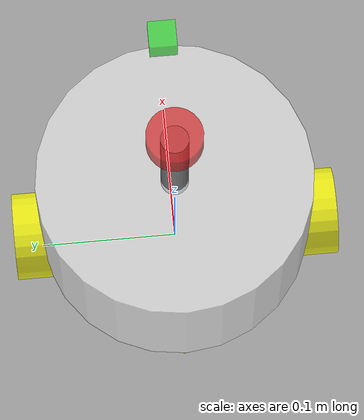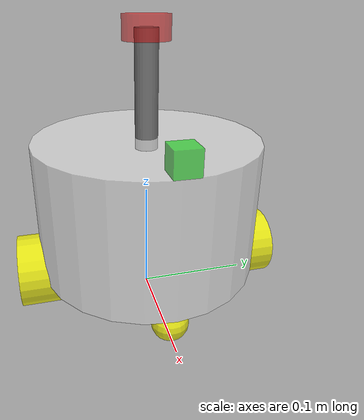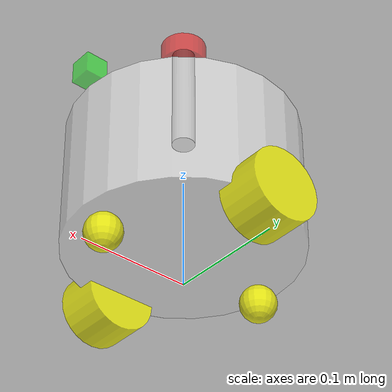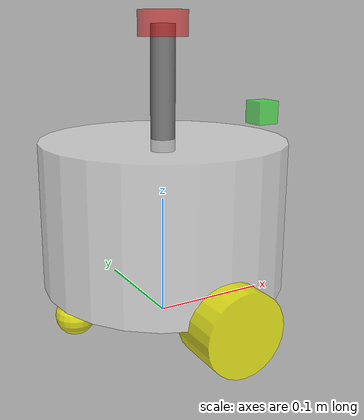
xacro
<?xml version="1.0"?>
<robot xmlns:xacro="http://www.ros.org/wiki/xacro" name="labot">

    <!--包含身体部件的xacro文件-->
    <xacro:include filename="$(find bot_desc)/urdf/mybot/base.urdf.xacro"/>
    <!--包含激光雷达部件的xacro文件-->
    <xacro:include filename="$(find bot_desc)/urdf/mybot/sensor/laser.urdf.xacro"/>
    <!--包含IMU部件的xacro文件-->
    <xacro:include filename="$(find bot_desc)/urdf/mybot/sensor/imu.urdf.xacro"/>
    <!--包含相机部件的xacro文件-->
    <xacro:include filename="$(find bot_desc)/urdf/mybot/sensor/camera.urdf.xacro"/>
    <!--包含轮子部件的xacro文件-->
    <xacro:include filename="$(find bot_desc)/urdf/mybot/actor/wheel.urdf.xacro"/>
    <!--包含万向轮部件的xacro文件-->
    <xacro:include filename="$(find bot_desc)/urdf/mybot/actor/caster.urdf.xacro"/>
    <!--插件-->
    <xacro:include filename="$(find bot_desc)/urdf/mybot/plugins/gazebo_sensor_plugin.xacro"/>
    <xacro:include filename="$(find bot_desc)/urdf/mybot/mybot_ros2_control.xacro"/>
    <xacro:include filename="$(find bot_desc)/urdf/mybot/plugins/gazebo_control_plugin.xacro"/>

    <!--使用宏来实例化身体和传感器部件并设置它们的位置参数-->
    <xacro:base_xacro length="0.12" radius="0.1"/>
    <xacro:laser_xacro xyz="0.0 0.0 0.10"/>
    <xacro:imu_xacro xyz="0.0 0.0 0.02"/>
    <xacro:camera_xacro xyz="0.1 0.0 0.075"/>
    <xacro:wheel_xacro wheel_name="left_wheel" xyz="0 0.1 -0.06"/>
    <xacro:wheel_xacro wheel_name="right_wheel" xyz="0 -0.1 -0.06"/>
    <xacro:caster_xacro caster_name="front_caster" xyz="0.08 0.0 -0.076"/>
    <xacro:caster_xacro caster_name="rear_caster" xyz="-0.08 0.0 -0.076"/>

    <xacro:gazebo_sensor_plugin />
    <xacro:mybot_ros2_control />

</robot>

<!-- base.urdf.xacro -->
<robot xmlns:xacro="http://www.ros.org/wiki/xacro">
    <xacro:macro name ="base_xacro" params="length radius">
        <link name="base_footprint" />

        <!--机器人的身体部分-->
        <link name="base_link">
        <!--部件的外观描述-->
            <visual>
                <origin xyz="0.0 0.0 0.0" rpy="0.0 0.0 0.0"/>
                <!--几何形状-->
                <geometry>
                    <cylinder radius="${radius}" length="${length}"/>
                </geometry>
                <!--材质和颜色描述-->
                <material name="white">
                    <color rgba="1.0 1.0 1.0 0.5"/>
                </material>
            </visual>
            <collision>
                <origin xyz="0.0 0.0 0.0" rpy="0.0 0.0 0.0"/>
                    <!--几何形状-->
                    <geometry>
                        <cylinder radius="${radius}" length="${length}"/>
                    </geometry>
                    <!--材质和颜色描述-->
                    <material name="white">
                        <color rgba="1.0 1.0 1.0 0.5"/>
                    </material>
            </collision>
        </link>
        <joint name="joint_name" type="fixed">
            <parent link="base_footprint"/>
            <child link="base_link"/>
            <origin xyz="0.0 0.0 ${length/2.0 + 0.032-0.001}" rpy="0.0 0.0 0.0"/>

        </joint>
    </xacro:macro>

</robot>

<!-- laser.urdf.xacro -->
<robot xmlns:xacro="http://www.ros.org/wiki/xacro">
    <xacro:include filename="$(find bot_desc)/urdf/mybot/common_inertia.xacro"/>
    <xacro:macro name ="laser_xacro" params="xyz">
    <!--雷达支撑杆-->
        <link name="laser_cylinder_link">
            <visual>
                <origin xyz="0.0 0.0 0.0" rpy="0.0 0.0 0.0"/>
                <geometry>
                    <cylinder radius="0.01" length="0.1"/>
                </geometry>
                <material name="gray">
                    <color rgba="0.5 0.5 0.5 1.0"/>
                </material>
            </visual>
            <collision>
                <origin xyz="0.0 0.0 0.0" rpy="0.0 0.0 0.0"/>
                <geometry>
                    <cylinder radius="0.01" length="0.1"/>
                </geometry>
                <material name="gray">
                    <color rgba="0.5 0.5 0.5 1.0"/>
                </material>
            </collision>
            <xacro:cylinder_inertia m="0.05" r="0.01" h="0.1"/>
        </link>
         <!--机器人的激光雷达部件-->
        <link name="laser_link">
            <visual>
                <origin xyz="0.0 0.0 0.0" rpy="0.0 0.0 0.0"/>
                <geometry>
                    <cylinder radius="0.02" length="0.02"/>
                </geometry>
                <material name="red">
                    <color rgba="1.0 0.0 0.0 0.5"/>
                </material>
            </visual>
            <collision>
                <origin xyz="0.0 0.0 0.0" rpy="0.0 0.0 0.0"/>
                <geometry>
                    <cylinder radius="0.02" length="0.02"/>
                </geometry>
                <material name="red">
                    <color rgba="1.0 0.0 0.0 0.5"/>
                </material>
            </collision>
            <xacro:cylinder_inertia m="0.1" r="0.02" h="0.02"/>
        </link>

        <!--连接身体和激光雷达的关节-->
        <joint name="laser_joint" type="fixed">
            <parent link="laser_cylinder_link"/>
            <child link="laser_link"/>
            <origin xyz="0.0 0.0 0.05" rpy="0.0 0.0 0.0"/>
        </joint>

        <joint name="laser_cylinder_joint" type="fixed">
            <parent link="base_link"/>
            <child link="laser_cylinder_link"/>
            <origin xyz="${xyz}" rpy="0.0 0.0 0.0"/>
        </joint>
        <gazebo reference="laser_cylinder_link">
            <material>Gazebo/Black</material>
        </gazebo>
        <gazebo reference="laser_link">
            <material>Gazebo/Black</material>
        </gazebo>
    </xacro:macro>
</robot>

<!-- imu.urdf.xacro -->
<robot xmlns:xacro="http://www.ros.org/wiki/xacro">
    <xacro:include filename="$(find bot_desc)/urdf/mybot/common_inertia.xacro"/>
    <xacro:macro name ="imu_xacro" params="xyz">
         <!--机器人的IMU部件and惯性测量传感器-->
        <link name="imu_link">
            <visual>
                <origin xyz="0.0 0.0 0.0" rpy="0.0 0.0 0.0"/>
                <geometry>
                    <box size="0.02 0.02 0.02"/>
                </geometry>
                <material name="blue">
                    <color rgba="0.0 0.0 1.0 0.5"/>
                </material>
            </visual>
            <collision>
                <origin xyz="0.0 0.0 0.0" rpy="0.0 0.0 0.0"/>
                <geometry>
                    <box size="0.02 0.02 0.02"/>
                </geometry>
                <material name="blue">
                    <color rgba="0.0 0.0 1.0 0.5"/>
                </material>
            </collision>
            <xacro:box_inertia m="0.05" w="0.02" h="0.02" d="0.02"/>
        </link>

        <!--连接身体和IMU的关节-->
        <joint name="imu_joint" type="fixed">
            <parent link="base_link"/>
            <child link="imu_link"/>
            <origin xyz="${xyz}" rpy="0.0 0.0 0.0"/>
        </joint>
            <gazebo reference="imu_link">
                <material>Gazebo/Blue</material>
            </gazebo>
    </xacro:macro>
</robot>

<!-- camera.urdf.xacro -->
<robot xmlns:xacro="http://www.ros.org/wiki/xacro">
    <xacro:include filename="$(find bot_desc)/urdf/mybot/common_inertia.xacro"/>
    <xacro:macro name ="camera_xacro" params="xyz">
         <!--机器人的相机部件-->
        <link name="camera_link">
            <visual>
                <origin xyz="0.0 0.0 0.0" rpy="0.0 0.0 0.0"/>
                <geometry>
                    <box size="0.02 0.02 0.02"/>
                </geometry>
                <material name="green">
                    <color rgba="0.0 1.0 0.0 0.5"/>
                </material>
            </visual>
            <collision>
                <origin xyz="0.0 0.0 0.0" rpy="0.0 0.0 0.0"/>
                <geometry>
                    <box size="0.02 0.02 0.02"/>
                </geometry>
                <material name="green">
                    <color rgba="0.0 1.0 0.0 0.5"/>
                </material>
            </collision>
        </link>

        <!--连接身体和相机的关节-->
        <joint name="camera_joint" type="fixed">
            <parent link="base_link"/>
            <child link="camera_link"/>
            <origin xyz="${xyz}" rpy="0.0 0.0 0.0"/>
        </joint>
    </xacro:macro>
</robot>

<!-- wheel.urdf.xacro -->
<robot xmlns:xacro="http://www.ros.org/wiki/xacro">
    <xacro:include filename="$(find bot_desc)/urdf/mybot/common_inertia.xacro"/>
    <xacro:macro name ="wheel_xacro" params="wheel_name xyz">
         <!--机器人的轮子部件-->
        <link name="${wheel_name}_link">
            <visual>
                <origin xyz="0.0 0.0 0.0" rpy="1.57079 0.0 0.0"/>
                <geometry>
                    <cylinder radius="0.032" length="0.04"/>
                </geometry>
                <material name="yellow">
                    <color rgba="1.0 1.0 0.0 0.8"/>
                </material>
            </visual>
            <collision>
                <origin xyz="0.0 0.0 0.0" rpy="1.57079 0.0 0.0"/>
                <geometry>
                    <cylinder radius="0.032" length="0.04"/>
                </geometry>
                <material name="yellow">
                    <color rgba="1.0 1.0 0.0 0.8"/>
                </material>
            </collision>
            <xacro:cylinder_inertia m="0.05" r="0.032" h="0.04"/>
        </link>

        <!--连接身体和轮子的关节-->
        <joint name="${wheel_name}_joint" type="continuous">
            <parent link="base_link"/>
            <child link="${wheel_name}_link"/>
            <origin xyz="${xyz}" rpy="0.0 0.0 0.0"/>
            <axis xyz="0.0 1.0 0.0"/>
        </joint>
            <gazebo reference="${wheel_name}_link">
                <mu1 value="20.0"/>
                <mu2 value="20.0"/>
                <kp value="1000000000.0"/>
                <kd value="1.0"/>
                <material>Gazebo/Yellow</material>
            </gazebo>
    </xacro:macro>
</robot>

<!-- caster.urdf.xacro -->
<robot xmlns:xacro="http://www.ros.org/wiki/xacro">
    <xacro:include filename="$(find bot_desc)/urdf/mybot/common_inertia.xacro"/>
    <xacro:macro name ="caster_xacro" params="caster_name xyz">
         <!--机器人的轮子部件-->
        <link name="${caster_name}_link">
            <visual>
                <origin xyz="0.0 0.0 0.0" rpy="0.0 0.0 0.0"/>
                <geometry>
                    <sphere radius="0.016"/>
                </geometry>
                <material name="yellow">
                    <color rgba="1.0 1.0 0.0 0.8"/>
                </material>
            </visual>
            <collision>
                <origin xyz="0.0 0.0 0.0" rpy="0.0 0.0 0.0"/>
                <geometry>
                    <sphere radius="0.016"/>
                </geometry>
                <material name="yellow">
                    <color rgba="1.0 1.0 0.0 0.8"/>
                </material>
            </collision>
        </link>

        <!--连接身体和轮子的关节-->
        <joint name="${caster_name}_joint" type="fixed">
            <parent link="base_link"/>
            <child link="${caster_name}_link"/>
            <origin xyz="${xyz}" rpy="0.0 0.0 0.0"/>
        </joint>
    </xacro:macro>
</robot>
